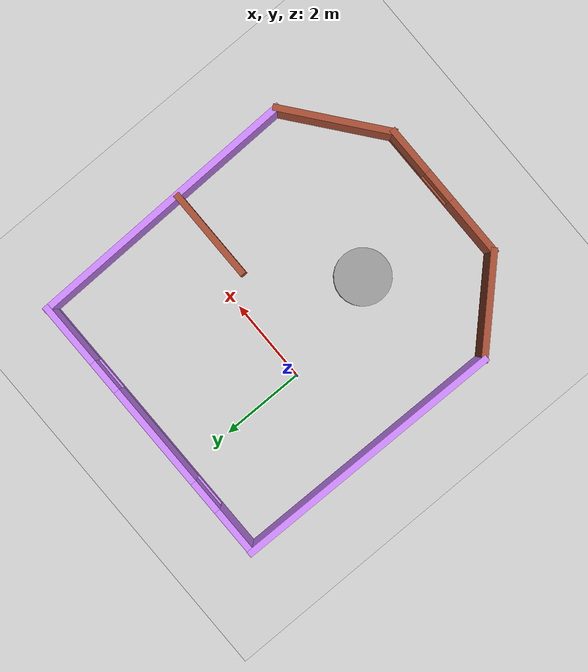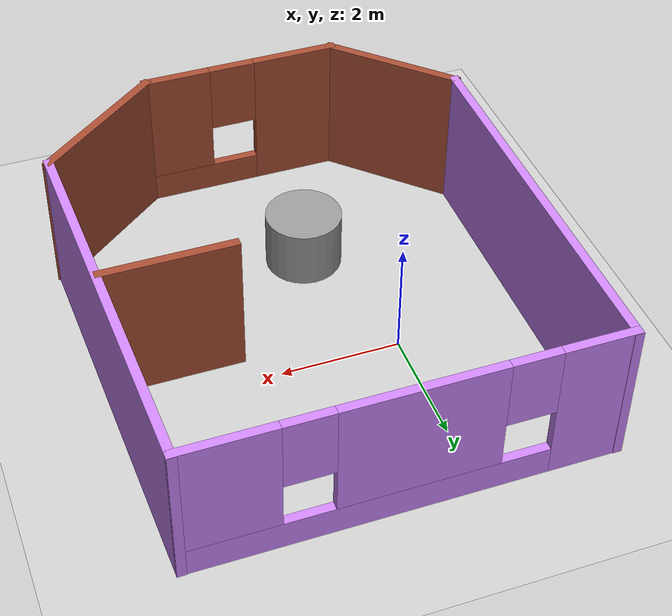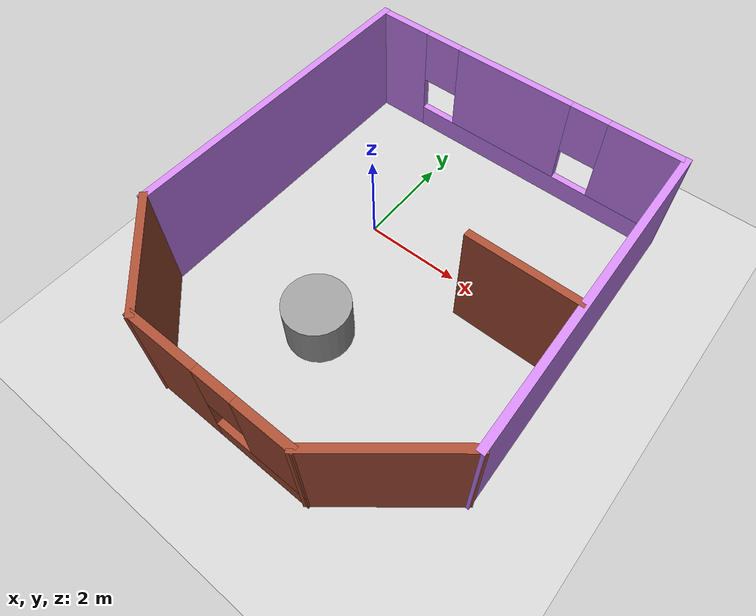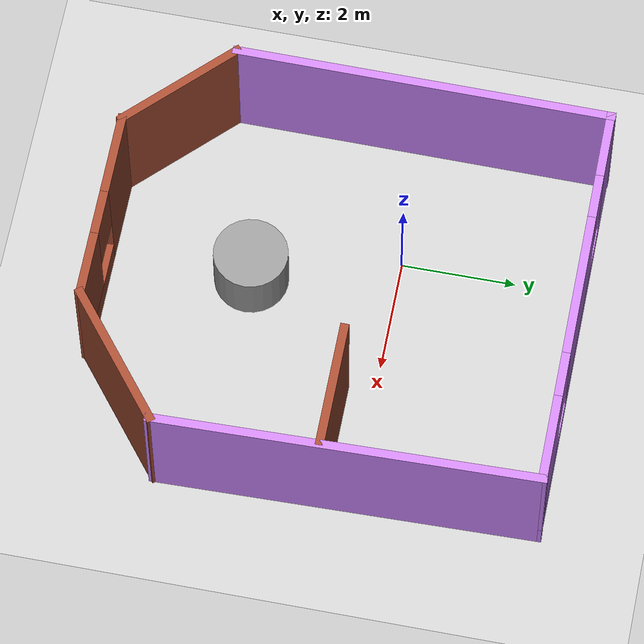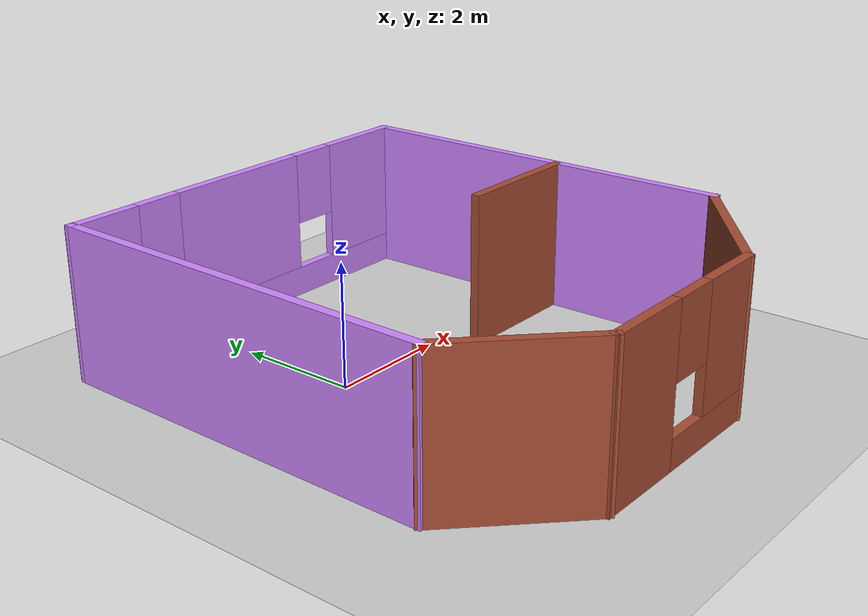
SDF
<sdf version="1.6">
 <world name="default">
  <light name="sun" type="directional">
   <pose>0 0 10 0 -0 0</pose>
   <diffuse>0.8 0.8 0.8 1</diffuse>
   <specular>0.2 0.2 0.2 1</specular>
   <attenuation>
    <range>1000</range>
    <constant>0.9</constant>
    <linear>0.01</linear>
    <quadratic>0.001</quadratic>
   </attenuation>
   <direction>-0.5 0.1 -0.9</direction>
  </light>
  <model name="ground_plane">
   <static>1</static>
   <link name="link">
    <collision name="collision">
     <geometry><plane><normal>0 0 1</normal><size>100 100</size></plane></geometry>
     <surface><friction><ode><mu>100</mu><mu2>50</mu2></ode></friction></surface>
    </collision>
    <visual name="visual">
     <cast_shadows>0</cast_shadows>
     <geometry><plane><normal>0 0 1</normal><size>100 100</size></plane></geometry>
     <material>
      <script><uri>file://media/materials/scripts/gazebo.material</uri><name>Gazebo/Grey</name></script>
     </material>
    </visual>
   </link>
  </model>
  <gravity>0 0 -9.8</gravity>
  <magnetic_field>6e-06 2.3e-05 -4.2e-05</magnetic_field>
  <atmosphere type="adiabatic"/>
  <physics name="default_physics" default="0" type="ode">
   <max_step_size>0.001</max_step_size>
   <real_time_factor>1</real_time_factor>
   <real_time_update_rate>1000</real_time_update_rate>
  </physics>
  <scene><ambient>0.4 0.4 0.4 1</ambient><background>0.7 0.7 0.7 1</background><shadows>1</shadows></scene>
  <spherical_coordinates>
   <surface_model>EARTH_WGS84</surface_model>
   <latitude_deg>0</latitude_deg>
   <longitude_deg>0</longitude_deg>
   <elevation>0</elevation>
   <heading_deg>0</heading_deg>
  </spherical_coordinates>
  <model name="RobotHouse4">
   <pose>1.22308 -0.925556 0 0 -0 0</pose>
   <link name="Wall_0">
    <collision name="Wall_0_Collision">
     <geometry><box><size>6.67019 0.15 2.5</size></box></geometry>
     <pose>0 0 1.25 0 -0 0</pose>
    </collision>
    <visual name="Wall_0_Visual">
     <pose>0 0 1.25 0 -0 0</pose>
     <geometry><box><size>6.67019 0.15 2.5</size></box></geometry>
     <material>
      <script><uri>file://media/materials/scripts/gazebo.material</uri><name>Gazebo/Grey</name></script>
      <ambient>0.803922 0.52549 1 1</ambient>
     </material>
     <meta><layer>0</layer></meta>
    </visual>
    <pose>-3.49808 0.845556 0 0 0 -1.57847</pose>
   </link>
   <link name="Wall_10">
    <pose>-0.048083 4.09556 0 0 -0 0</pose>
    <visual name="Wall_10_Visual_0">
     <pose>-2.8825 0 1.25 0 -0 0</pose>
     <geometry><box><size>1.235 0.15 2.5</size></box></geometry>
     <material>
      <script><uri>file://media/materials/scripts/gazebo.material</uri><name>Gazebo/Grey</name></script>
      <ambient>0.803922 0.52549 1 1</ambient>
     </material>
     <meta><layer>0</layer></meta>
    </visual>
    <collision name="Wall_10_Collision_0">
     <geometry><box><size>1.235 0.15 2.5</size></box></geometry>
     <pose>-2.8825 0 1.25 0 -0 0</pose>
    </collision>
    <visual name="Wall_10_Visual_1">
     <pose>0.6175 0 0.25 0 -0 0</pose>
     <geometry><box><size>5.765 0.15 0.5</size></box></geometry>
     <material>
      <script><uri>file://media/materials/scripts/gazebo.material</uri><name>Gazebo/Grey</name></script>
      <ambient>0.803922 0.52549 1 1</ambient>
     </material>
     <meta><layer>0</layer></meta>
    </visual>
    <collision name="Wall_10_Collision_1">
     <geometry><box><size>5.765 0.15 0.5</size></box></geometry>
     <pose>0.6175 0 0.25 0 -0 0</pose>
    </collision>
    <visual name="Wall_10_Visual_2">
     <pose>-0.18 0 1.5 0 -0 0</pose>
     <geometry><box><size>2.57 0.15 2</size></box></geometry>
     <material>
      <script><uri>file://media/materials/scripts/gazebo.material</uri><name>Gazebo/Grey</name></script>
      <ambient>0.803922 0.52549 1 1</ambient>
     </material>
     <meta><layer>0</layer></meta>
    </visual>
    <collision name="Wall_10_Collision_2">
     <geometry><box><size>2.57 0.15 2</size></box></geometry>
     <pose>-0.18 0 1.5 0 -0 0</pose>
    </collision>
    <visual name="Wall_10_Visual_3">
     <pose>2.7025 0 1.5 0 -0 0</pose>
     <geometry><box><size>1.595 0.15 2</size></box></geometry>
     <material>
      <script><uri>file://media/materials/scripts/gazebo.material</uri><name>Gazebo/Grey</name></script>
      <ambient>0.803922 0.52549 1 1</ambient>
     </material>
     <meta><layer>0</layer></meta>
    </visual>
    <collision name="Wall_10_Collision_3">
     <geometry><box><size>1.595 0.15 2</size></box></geometry>
     <pose>2.7025 0 1.5 0 -0 0</pose>
    </collision>
    <visual name="Wall_10_Visual_4">
     <pose>-1.865 0 1.9 0 -0 0</pose>
     <geometry><box><size>0.8 0.15 1.2</size></box></geometry>
     <material>
      <script><uri>file://media/materials/scripts/gazebo.material</uri><name>Gazebo/Grey</name></script>
      <ambient>0.803922 0.52549 1 1</ambient>
     </material>
     <meta><layer>0</layer></meta>
    </visual>
    <collision name="Wall_10_Collision_4">
     <geometry><box><size>0.8 0.15 1.2</size></box></geometry>
     <pose>-1.865 0 1.9 0 -0 0</pose>
    </collision>
    <visual name="Wall_10_Visual_5">
     <pose>1.505 0 1.9 0 -0 0</pose>
     <geometry><box><size>0.8 0.15 1.2</size></box></geometry>
     <material>
      <script><uri>file://media/materials/scripts/gazebo.material</uri><name>Gazebo/Grey</name></script>
      <ambient>0.803922 0.52549 1 1</ambient>
     </material>
     <meta><layer>0</layer></meta>
    </visual>
    <collision name="Wall_10_Collision_5">
     <geometry><box><size>0.8 0.15 1.2</size></box></geometry>
     <pose>1.505 0 1.9 0 -0 0</pose>
    </collision>
   </link>
   <link name="Wall_14">
    <collision name="Wall_14_Collision">
     <geometry><box><size>2.25 0.15 2.5</size></box></geometry>
     <pose>0 0 1.25 0 -0 0</pose>
    </collision>
    <visual name="Wall_14_Visual">
     <pose>0 0 1.25 0 -0 0</pose>
     <geometry><box><size>2.25 0.15 2.5</size></box></geometry>
     <material>
      <script><uri>file://media/materials/scripts/gazebo.material</uri><name>Gazebo/Bricks</name></script>
      <ambient>1 1 1 1</ambient>
     </material>
     <meta><layer>0</layer></meta>
    </visual>
    <pose>2.35692 0.385556 0 0 -0 3.14159</pose>
   </link>
   <link name="Wall_3">
    <collision name="Wall_3_Collision">
     <geometry><box><size>2.5 0.15 2.5</size></box></geometry>
     <pose>0 0 1.25 0 -0 0</pose>
    </collision>
    <visual name="Wall_3_Visual">
     <pose>0 0 1.25 0 -0 0</pose>
     <geometry><box><size>2.5 0.15 2.5</size></box></geometry>
     <material>
      <script><uri>file://media/materials/scripts/gazebo.material</uri><name>Gazebo/Bricks</name></script>
      <ambient>1 1 1 1</ambient>
     </material>
     <meta><layer>0</layer></meta>
    </visual>
    <pose>-2.69223 -3.2453 0 0 0 -0.785398</pose>
   </link>
   <link name="Wall_4">
    <pose>-0.186382 -4.07615 0 0 -0 0</pose>
    <visual name="Wall_4_Visual_0">
     <pose>-0.99835 0 1.25 0 -0 0</pose>
     <geometry><box><size>1.5033 0.15 2.5</size></box></geometry>
     <material>
      <script><uri>file://media/materials/scripts/gazebo.material</uri><name>Gazebo/Bricks</name></script>
      <ambient>1 1 1 1</ambient>
     </material>
     <meta><layer>0</layer></meta>
    </visual>
    <collision name="Wall_4_Collision_0">
     <geometry><box><size>1.5033 0.15 2.5</size></box></geometry>
     <pose>-0.99835 0 1.25 0 -0 0</pose>
    </collision>
    <visual name="Wall_4_Visual_1">
     <pose>0.75165 0 0.25 0 -0 0</pose>
     <geometry><box><size>1.9967 0.15 0.5</size></box></geometry>
     <material>
      <script><uri>file://media/materials/scripts/gazebo.material</uri><name>Gazebo/Bricks</name></script>
      <ambient>1 1 1 1</ambient>
     </material>
     <meta><layer>0</layer></meta>
    </visual>
    <collision name="Wall_4_Collision_1">
     <geometry><box><size>1.9967 0.15 0.5</size></box></geometry>
     <pose>0.75165 0 0.25 0 -0 0</pose>
    </collision>
    <visual name="Wall_4_Visual_2">
     <pose>1.15165 0 1.5 0 -0 0</pose>
     <geometry><box><size>1.1967 0.15 2</size></box></geometry>
     <material>
      <script><uri>file://media/materials/scripts/gazebo.material</uri><name>Gazebo/Bricks</name></script>
      <ambient>1 1 1 1</ambient>
     </material>
     <meta><layer>0</layer></meta>
    </visual>
    <collision name="Wall_4_Collision_2">
     <geometry><box><size>1.1967 0.15 2</size></box></geometry>
     <pose>1.15165 0 1.5 0 -0 0</pose>
    </collision>
    <visual name="Wall_4_Visual_3">
     <pose>0.153299 0 1.9 0 -0 0</pose>
     <geometry><box><size>0.8 0.15 1.2</size></box></geometry>
     <material>
      <script><uri>file://media/materials/scripts/gazebo.material</uri><name>Gazebo/Bricks</name></script>
      <ambient>1 1 1 1</ambient>
     </material>
     <meta><layer>0</layer></meta>
    </visual>
    <collision name="Wall_4_Collision_3">
     <geometry><box><size>0.8 0.15 1.2</size></box></geometry>
     <pose>0.153299 0 1.9 0 -0 0</pose>
    </collision>
   </link>
   <link name="Wall_5">
    <collision name="Wall_5_Collision">
     <geometry><box><size>2.7481 0.15 2.5</size></box></geometry>
     <pose>0 0 1.25 0 -0 0</pose>
    </collision>
    <visual name="Wall_5_Visual">
     <pose>0 0 1.25 0 -0 0</pose>
     <geometry><box><size>2.7481 0.15 2.5</size></box></geometry>
     <material>
      <script><uri>file://media/materials/scripts/gazebo.material</uri><name>Gazebo/Bricks</name></script>
      <ambient>1 1 1 1</ambient>
     </material>
     <meta><layer>0</layer></meta>
    </visual>
    <pose>2.5062 -3.26864 0 0 -0 0.670795</pose>
   </link>
   <link name="Wall_7">
    <collision name="Wall_7_Collision">
     <geometry><box><size>6.72834 0.15 2.5</size></box></geometry>
     <pose>0 0 1.25 0 -0 0</pose>
    </collision>
    <visual name="Wall_7_Visual">
     <pose>0 0 1.25 0 -0 0</pose>
     <geometry><box><size>6.72834 0.15 2.5</size></box></geometry>
     <material>
      <script><uri>file://media/materials/scripts/gazebo.material</uri><name>Gazebo/Grey</name></script>
      <ambient>0.803922 0.52549 1 1</ambient>
     </material>
     <meta><layer>0</layer></meta>
    </visual>
    <pose>3.45035 0.817205 0 0 -0 1.59312</pose>
   </link>
   <static>1</static>
  </model>
  <model name="unit_cylinder">
   <pose>0.74243 -2.5125 0.499993 -3e-06 -4e-06 -0</pose>
   <link name="link">
    <inertial>
     <mass>1</mass>
     <inertia><ixx>0.145833</ixx><ixy>0</ixy><ixz>0</ixz><iyy>0.145833</iyy><iyz>0</iyz><izz>0.125</izz></inertia>
    </inertial>
    <collision name="collision">
     <geometry><cylinder><radius>0.64965</radius><length>1</length></cylinder></geometry>
    </collision>
    <visual name="visual">
     <geometry><cylinder><radius>0.64965</radius><length>1</length></cylinder></geometry>
     <material>
      <script><name>Gazebo/Grey</name><uri>file://media/materials/scripts/gazebo.material</uri></script>
     </material>
    </visual>
   </link>
  </model>
 </world>
</sdf>
